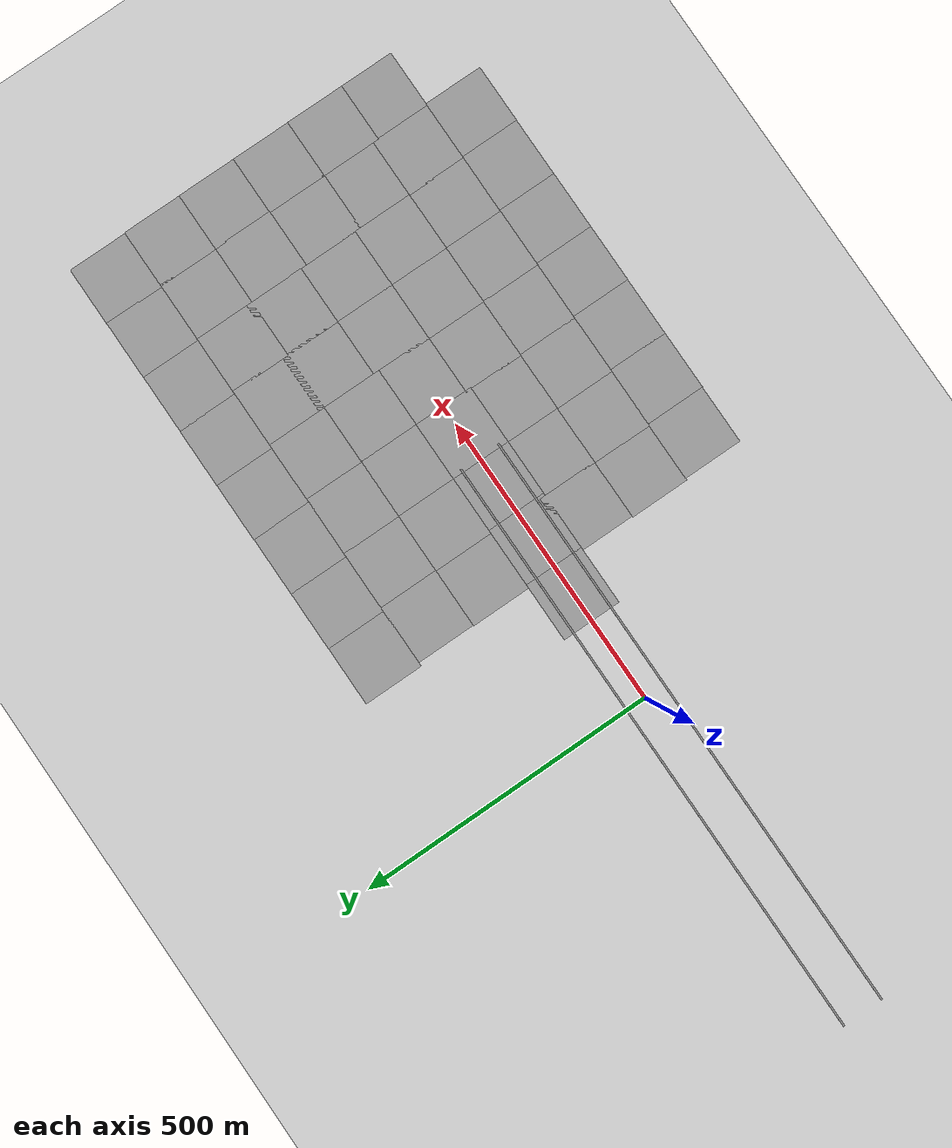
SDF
<sdf version="1.7">
 <world name="default">
  <model name="ground_plane">
   <static>1</static>
   <link name="link">
    <collision name="collision">
     <geometry><plane><normal>0 0 1</normal><size>100 100</size></plane></geometry>
     <surface><friction><ode><mu>100</mu><mu2>50</mu2></ode></friction></surface>
    </collision>
    <visual name="visual">
     <cast_shadows>0</cast_shadows>
     <geometry><plane><normal>0 0 1</normal><size>100 100</size></plane></geometry>
     <material>
      <script><uri>file://media/materials/scripts/gazebo.material</uri><name>Gazebo/Grey</name></script>
     </material>
    </visual>
   </link>
  </model>
  <model name="ground_plane_1">
   <static>1</static>
   <link name="link">
    <collision name="collision">
     <geometry><plane><normal>0 0 1</normal><size>100 100</size></plane></geometry>
     <surface>
      <contact><collide_bitmask>65535</collide_bitmask></contact>
      <friction><ode><mu>100</mu><mu2>50</mu2></ode></friction>
     </surface>
    </collision>
    <visual name="visual">
     <cast_shadows>0</cast_shadows>
     <geometry><plane><normal>0 0 1</normal><size>100 100</size></plane></geometry>
     <material>
      <script><uri>file://media/materials/scripts/gazebo.material</uri><name>Gazebo/Grey</name></script>
     </material>
    </visual>
   </link>
   <pose>189.869 0.088778 0 0 -0 0</pose>
  </model>
  <model name="ground_plane_2">
   <static>1</static>
   <link name="link">
    <collision name="collision">
     <geometry><plane><normal>0 0 1</normal><size>100 100</size></plane></geometry>
     <surface>
      <contact><collide_bitmask>65535</collide_bitmask></contact>
      <friction><ode><mu>100</mu><mu2>50</mu2></ode></friction>
     </surface>
    </collision>
    <visual name="visual">
     <cast_shadows>0</cast_shadows>
     <geometry><plane><normal>0 0 1</normal><size>100 100</size></plane></geometry>
     <material>
      <script><uri>file://media/materials/scripts/gazebo.material</uri><name>Gazebo/Grey</name></script>
     </material>
    </visual>
   </link>
   <pose>289.291 0.137369 0 0 -0 0</pose>
  </model>
  <model name="ground_plane_3">
   <static>1</static>
   <link name="link">
    <collision name="collision">
     <geometry><plane><normal>0 0 1</normal><size>100 100</size></plane></geometry>
     <surface>
      <contact><collide_bitmask>65535</collide_bitmask></contact>
      <friction><ode><mu>100</mu><mu2>50</mu2></ode></friction>
     </surface>
    </collision>
    <visual name="visual">
     <cast_shadows>0</cast_shadows>
     <geometry><plane><normal>0 0 1</normal><size>100 100</size></plane></geometry>
     <material>
      <script><uri>file://media/materials/scripts/gazebo.material</uri><name>Gazebo/Grey</name></script>
     </material>
    </visual>
   </link>
   <pose>384.2 0.162384 0 0 -0 0</pose>
  </model>
  <model name="ground_plane_4">
   <static>1</static>
   <link name="link">
    <collision name="collision">
     <geometry><plane><normal>0 0 1</normal><size>100 100</size></plane></geometry>
     <surface>
      <contact><collide_bitmask>65535</collide_bitmask></contact>
      <friction><ode><mu>100</mu><mu2>50</mu2></ode></friction>
     </surface>
    </collision>
    <visual name="visual">
     <cast_shadows>0</cast_shadows>
     <geometry><plane><normal>0 0 1</normal><size>100 100</size></plane></geometry>
     <material>
      <script><uri>file://media/materials/scripts/gazebo.material</uri><name>Gazebo/Grey</name></script>
     </material>
    </visual>
   </link>
   <pose>483.4 0.219802 0 0 -0 0</pose>
  </model>
  <model name="ground_plane_11">
   <static>1</static>
   <link name="link">
    <collision name="collision">
     <geometry><plane><normal>0 0 1</normal><size>100 100</size></plane></geometry>
     <surface>
      <contact><collide_bitmask>65535</collide_bitmask></contact>
      <friction><ode><mu>100</mu><mu2>50</mu2></ode></friction>
     </surface>
    </collision>
    <visual name="visual">
     <cast_shadows>0</cast_shadows>
     <geometry><plane><normal>0 0 1</normal><size>100 100</size></plane></geometry>
     <material>
      <script><uri>file://media/materials/scripts/gazebo.material</uri><name>Gazebo/Grey</name></script>
     </material>
    </visual>
   </link>
   <pose>583.142 0.155845 0 0 -0 0</pose>
  </model>
  <model name="ground_plane_15">
   <static>1</static>
   <link name="link">
    <collision name="collision">
     <geometry><plane><normal>0 0 1</normal><size>100 100</size></plane></geometry>
     <surface>
      <contact><collide_bitmask>65535</collide_bitmask></contact>
      <friction><ode><mu>100</mu><mu2>50</mu2></ode></friction>
     </surface>
    </collision>
    <visual name="visual">
     <cast_shadows>0</cast_shadows>
     <geometry><plane><normal>0 0 1</normal><size>100 100</size></plane></geometry>
     <material>
      <script><uri>file://media/materials/scripts/gazebo.material</uri><name>Gazebo/Grey</name></script>
     </material>
    </visual>
   </link>
   <pose>284.873 -89.7127 0 0 -0 0</pose>
  </model>
  <model name="ground_plane_16">
   <static>1</static>
   <link name="link">
    <collision name="collision">
     <geometry><plane><normal>0 0 1</normal><size>100 100</size></plane></geometry>
     <surface>
      <contact><collide_bitmask>65535</collide_bitmask></contact>
      <friction><ode><mu>100</mu><mu2>50</mu2></ode></friction>
     </surface>
    </collision>
    <visual name="visual">
     <cast_shadows>0</cast_shadows>
     <geometry><plane><normal>0 0 1</normal><size>100 100</size></plane></geometry>
     <material>
      <script><uri>file://media/materials/scripts/gazebo.material</uri><name>Gazebo/Grey</name></script>
     </material>
    </visual>
   </link>
   <pose>383.053 -89.8676 0 0 -0 0</pose>
  </model>
  <model name="ground_plane_17">
   <static>1</static>
   <link name="link">
    <collision name="collision">
     <geometry><plane><normal>0 0 1</normal><size>100 100</size></plane></geometry>
     <surface>
      <contact><collide_bitmask>65535</collide_bitmask></contact>
      <friction><ode><mu>100</mu><mu2>50</mu2></ode></friction>
     </surface>
    </collision>
    <visual name="visual">
     <cast_shadows>0</cast_shadows>
     <geometry><plane><normal>0 0 1</normal><size>100 100</size></plane></geometry>
     <material>
      <script><uri>file://media/materials/scripts/gazebo.material</uri><name>Gazebo/Grey</name></script>
     </material>
    </visual>
   </link>
   <pose>481.519 -90.0718 0 0 -0 0</pose>
  </model>
  <model name="ground_plane_18">
   <static>1</static>
   <link name="link">
    <collision name="collision">
     <geometry><plane><normal>0 0 1</normal><size>100 100</size></plane></geometry>
     <surface>
      <contact><collide_bitmask>65535</collide_bitmask></contact>
      <friction><ode><mu>100</mu><mu2>50</mu2></ode></friction>
     </surface>
    </collision>
    <visual name="visual">
     <cast_shadows>0</cast_shadows>
     <geometry><plane><normal>0 0 1</normal><size>100 100</size></plane></geometry>
     <material>
      <script><uri>file://media/materials/scripts/gazebo.material</uri><name>Gazebo/Grey</name></script>
     </material>
    </visual>
   </link>
   <pose>579.995 -90.1584 0 0 -0 0</pose>
  </model>
  <model name="ground_plane_25">
   <static>1</static>
   <link name="link">
    <collision name="collision">
     <geometry><plane><normal>0 0 1</normal><size>100 100</size></plane></geometry>
     <surface>
      <contact><collide_bitmask>65535</collide_bitmask></contact>
      <friction><ode><mu>100</mu><mu2>50</mu2></ode></friction>
     </surface>
    </collision>
    <visual name="visual">
     <cast_shadows>0</cast_shadows>
     <geometry><plane><normal>0 0 1</normal><size>100 100</size></plane></geometry>
     <material>
      <script><uri>file://media/materials/scripts/gazebo.material</uri><name>Gazebo/Grey</name></script>
     </material>
    </visual>
   </link>
   <pose>583.344 99.8555 0 0 -0 0</pose>
  </model>
  <model name="ground_plane_26">
   <static>1</static>
   <link name="link">
    <collision name="collision">
     <geometry><plane><normal>0 0 1</normal><size>100 100</size></plane></geometry>
     <surface>
      <contact><collide_bitmask>65535</collide_bitmask></contact>
      <friction><ode><mu>100</mu><mu2>50</mu2></ode></friction>
     </surface>
    </collision>
    <visual name="visual">
     <cast_shadows>0</cast_shadows>
     <geometry><plane><normal>0 0 1</normal><size>100 100</size></plane></geometry>
     <material>
      <script><uri>file://media/materials/scripts/gazebo.material</uri><name>Gazebo/Grey</name></script>
     </material>
    </visual>
   </link>
   <pose>483.812 99.9791 0 0 -0 0</pose>
  </model>
  <model name="ground_plane_27">
   <static>1</static>
   <link name="link">
    <collision name="collision">
     <geometry><plane><normal>0 0 1</normal><size>100 100</size></plane></geometry>
     <surface>
      <contact><collide_bitmask>65535</collide_bitmask></contact>
      <friction><ode><mu>100</mu><mu2>50</mu2></ode></friction>
     </surface>
    </collision>
    <visual name="visual">
     <cast_shadows>0</cast_shadows>
     <geometry><plane><normal>0 0 1</normal><size>100 100</size></plane></geometry>
     <material>
      <script><uri>file://media/materials/scripts/gazebo.material</uri><name>Gazebo/Grey</name></script>
     </material>
    </visual>
   </link>
   <pose>383.847 100.1 0 0 -0 0</pose>
  </model>
  <model name="ground_plane_28">
   <static>1</static>
   <link name="link">
    <collision name="collision">
     <geometry><plane><normal>0 0 1</normal><size>100 100</size></plane></geometry>
     <surface>
      <contact><collide_bitmask>65535</collide_bitmask></contact>
      <friction><ode><mu>100</mu><mu2>50</mu2></ode></friction>
     </surface>
    </collision>
    <visual name="visual">
     <cast_shadows>0</cast_shadows>
     <geometry><plane><normal>0 0 1</normal><size>100 100</size></plane></geometry>
     <material>
      <script><uri>file://media/materials/scripts/gazebo.material</uri><name>Gazebo/Grey</name></script>
     </material>
    </visual>
   </link>
   <pose>283.896 100.09 0 0 -0 0</pose>
  </model>
  <model name="ground_plane_38">
   <static>1</static>
   <link name="link">
    <collision name="collision">
     <geometry><plane><normal>0 0 1</normal><size>100 100</size></plane></geometry>
     <surface>
      <contact><collide_bitmask>65535</collide_bitmask></contact>
      <friction><ode><mu>100</mu><mu2>50</mu2></ode></friction>
     </surface>
    </collision>
    <visual name="visual">
     <cast_shadows>0</cast_shadows>
     <geometry><plane><normal>0 0 1</normal><size>100 100</size></plane></geometry>
     <material>
      <script><uri>file://media/materials/scripts/gazebo.material</uri><name>Gazebo/Grey</name></script>
     </material>
    </visual>
   </link>
   <pose>679.783 -90.0597 0 0 -0 0</pose>
  </model>
  <model name="ground_plane_39">
   <static>1</static>
   <link name="link">
    <collision name="collision">
     <geometry><plane><normal>0 0 1</normal><size>100 100</size></plane></geometry>
     <surface>
      <contact><collide_bitmask>65535</collide_bitmask></contact>
      <friction><ode><mu>100</mu><mu2>50</mu2></ode></friction>
     </surface>
    </collision>
    <visual name="visual">
     <cast_shadows>0</cast_shadows>
     <geometry><plane><normal>0 0 1</normal><size>100 100</size></plane></geometry>
     <material>
      <script><uri>file://media/materials/scripts/gazebo.material</uri><name>Gazebo/Grey</name></script>
     </material>
    </visual>
   </link>
   <pose>679.782 9.67716 0 0 -0 0</pose>
  </model>
  <model name="ground_plane_40">
   <static>1</static>
   <link name="link">
    <collision name="collision">
     <geometry><plane><normal>0 0 1</normal><size>100 100</size></plane></geometry>
     <surface>
      <contact><collide_bitmask>65535</collide_bitmask></contact>
      <friction><ode><mu>100</mu><mu2>50</mu2></ode></friction>
     </surface>
    </collision>
    <visual name="visual">
     <cast_shadows>0</cast_shadows>
     <geometry><plane><normal>0 0 1</normal><size>100 100</size></plane></geometry>
     <material>
      <script><uri>file://media/materials/scripts/gazebo.material</uri><name>Gazebo/Grey</name></script>
     </material>
    </visual>
   </link>
   <pose>682.586 109.571 0 0 -0 0</pose>
  </model>
  <model name="ground_plane_41">
   <static>1</static>
   <link name="link">
    <collision name="collision">
     <geometry><plane><normal>0 0 1</normal><size>100 100</size></plane></geometry>
     <surface>
      <contact><collide_bitmask>65535</collide_bitmask></contact>
      <friction><ode><mu>100</mu><mu2>50</mu2></ode></friction>
     </surface>
    </collision>
    <visual name="visual">
     <cast_shadows>0</cast_shadows>
     <geometry><plane><normal>0 0 1</normal><size>100 100</size></plane></geometry>
     <material>
      <script><uri>file://media/materials/scripts/gazebo.material</uri><name>Gazebo/Grey</name></script>
     </material>
    </visual>
   </link>
   <pose>779.284 -89.9308 0 0 -0 0</pose>
  </model>
  <model name="ground_plane_42">
   <static>1</static>
   <link name="link">
    <collision name="collision">
     <geometry><plane><normal>0 0 1</normal><size>100 100</size></plane></geometry>
     <surface>
      <contact><collide_bitmask>65535</collide_bitmask></contact>
      <friction><ode><mu>100</mu><mu2>50</mu2></ode></friction>
     </surface>
    </collision>
    <visual name="visual">
     <cast_shadows>0</cast_shadows>
     <geometry><plane><normal>0 0 1</normal><size>100 100</size></plane></geometry>
     <material>
      <script><uri>file://media/materials/scripts/gazebo.material</uri><name>Gazebo/Grey</name></script>
     </material>
    </visual>
   </link>
   <pose>779.063 9.76871 0 0 -0 0</pose>
  </model>
  <model name="ground_plane_43">
   <static>1</static>
   <link name="link">
    <collision name="collision">
     <geometry><plane><normal>0 0 1</normal><size>100 100</size></plane></geometry>
     <surface>
      <contact><collide_bitmask>65535</collide_bitmask></contact>
      <friction><ode><mu>100</mu><mu2>50</mu2></ode></friction>
     </surface>
    </collision>
    <visual name="visual">
     <cast_shadows>0</cast_shadows>
     <geometry><plane><normal>0 0 1</normal><size>100 100</size></plane></geometry>
     <material>
      <script><uri>file://media/materials/scripts/gazebo.material</uri><name>Gazebo/Grey</name></script>
     </material>
    </visual>
   </link>
   <pose>779.063 109.53 0 0 -0 0</pose>
  </model>
  <model name="ground_plane_44">
   <static>1</static>
   <link name="link">
    <collision name="collision">
     <geometry><plane><normal>0 0 1</normal><size>100 100</size></plane></geometry>
     <surface>
      <contact><collide_bitmask>65535</collide_bitmask></contact>
      <friction><ode><mu>100</mu><mu2>50</mu2></ode></friction>
     </surface>
    </collision>
    <visual name="visual">
     <cast_shadows>0</cast_shadows>
     <geometry><plane><normal>0 0 1</normal><size>100 100</size></plane></geometry>
     <material>
      <script><uri>file://media/materials/scripts/gazebo.material</uri><name>Gazebo/Grey</name></script>
     </material>
    </visual>
   </link>
   <pose>779.778 -189.58 0 0 -0 0</pose>
  </model>
  <model name="ground_plane_45">
   <static>1</static>
   <link name="link">
    <collision name="collision">
     <geometry><plane><normal>0 0 1</normal><size>100 100</size></plane></geometry>
     <surface>
      <contact><collide_bitmask>65535</collide_bitmask></contact>
      <friction><ode><mu>100</mu><mu2>50</mu2></ode></friction>
     </surface>
    </collision>
    <visual name="visual">
     <cast_shadows>0</cast_shadows>
     <geometry><plane><normal>0 0 1</normal><size>100 100</size></plane></geometry>
     <material>
      <script><uri>file://media/materials/scripts/gazebo.material</uri><name>Gazebo/Grey</name></script>
     </material>
    </visual>
   </link>
   <pose>679.964 -189.679 0 0 -0 0</pose>
  </model>
  <model name="ground_plane_46">
   <static>1</static>
   <link name="link">
    <collision name="collision">
     <geometry><plane><normal>0 0 1</normal><size>100 100</size></plane></geometry>
     <surface>
      <contact><collide_bitmask>65535</collide_bitmask></contact>
      <friction><ode><mu>100</mu><mu2>50</mu2></ode></friction>
     </surface>
    </collision>
    <visual name="visual">
     <cast_shadows>0</cast_shadows>
     <geometry><plane><normal>0 0 1</normal><size>100 100</size></plane></geometry>
     <material>
      <script><uri>file://media/materials/scripts/gazebo.material</uri><name>Gazebo/Grey</name></script>
     </material>
    </visual>
   </link>
   <pose>580.929 -189.656 0 0 -0 0</pose>
  </model>
  <model name="ground_plane_47">
   <static>1</static>
   <link name="link">
    <collision name="collision">
     <geometry><plane><normal>0 0 1</normal><size>100 100</size></plane></geometry>
     <surface>
      <contact><collide_bitmask>65535</collide_bitmask></contact>
      <friction><ode><mu>100</mu><mu2>50</mu2></ode></friction>
     </surface>
    </collision>
    <visual name="visual">
     <cast_shadows>0</cast_shadows>
     <geometry><plane><normal>0 0 1</normal><size>100 100</size></plane></geometry>
     <material>
      <script><uri>file://media/materials/scripts/gazebo.material</uri><name>Gazebo/Grey</name></script>
     </material>
    </visual>
   </link>
   <pose>481.923 -189.599 0 0 -0 0</pose>
  </model>
  <model name="ground_plane_48">
   <static>1</static>
   <link name="link">
    <collision name="collision">
     <geometry><plane><normal>0 0 1</normal><size>100 100</size></plane></geometry>
     <surface>
      <contact><collide_bitmask>65535</collide_bitmask></contact>
      <friction><ode><mu>100</mu><mu2>50</mu2></ode></friction>
     </surface>
    </collision>
    <visual name="visual">
     <cast_shadows>0</cast_shadows>
     <geometry><plane><normal>0 0 1</normal><size>100 100</size></plane></geometry>
     <material>
      <script><uri>file://media/materials/scripts/gazebo.material</uri><name>Gazebo/Grey</name></script>
     </material>
    </visual>
   </link>
   <pose>382.424 -189.408 0 0 -0 0</pose>
  </model>
  <model name="ground_plane_49">
   <static>1</static>
   <link name="link">
    <collision name="collision">
     <geometry><plane><normal>0 0 1</normal><size>100 100</size></plane></geometry>
     <surface>
      <contact><collide_bitmask>65535</collide_bitmask></contact>
      <friction><ode><mu>100</mu><mu2>50</mu2></ode></friction>
     </surface>
    </collision>
    <visual name="visual">
     <cast_shadows>0</cast_shadows>
     <geometry><plane><normal>0 0 1</normal><size>100 100</size></plane></geometry>
     <material>
      <script><uri>file://media/materials/scripts/gazebo.material</uri><name>Gazebo/Grey</name></script>
     </material>
    </visual>
   </link>
   <pose>283.057 -189.335 0 0 -0 0</pose>
  </model>
  <model name="ground_plane_59">
   <static>1</static>
   <link name="link">
    <collision name="collision">
     <geometry><plane><normal>0 0 1</normal><size>100 100</size></plane></geometry>
     <surface>
      <contact><collide_bitmask>65535</collide_bitmask></contact>
      <friction><ode><mu>100</mu><mu2>50</mu2></ode></friction>
     </surface>
    </collision>
    <visual name="visual">
     <cast_shadows>0</cast_shadows>
     <geometry><plane><normal>0 0 1</normal><size>100 100</size></plane></geometry>
     <material>
      <script><uri>file://media/materials/scripts/gazebo.material</uri><name>Gazebo/Grey</name></script>
     </material>
    </visual>
   </link>
   <pose>582.865 199.934 0 0 -0 0</pose>
  </model>
  <model name="ground_plane_60">
   <static>1</static>
   <link name="link">
    <collision name="collision">
     <geometry><plane><normal>0 0 1</normal><size>100 100</size></plane></geometry>
     <surface>
      <contact><collide_bitmask>65535</collide_bitmask></contact>
      <friction><ode><mu>100</mu><mu2>50</mu2></ode></friction>
     </surface>
    </collision>
    <visual name="visual">
     <cast_shadows>0</cast_shadows>
     <geometry><plane><normal>0 0 1</normal><size>100 100</size></plane></geometry>
     <material>
      <script><uri>file://media/materials/scripts/gazebo.material</uri><name>Gazebo/Grey</name></script>
     </material>
    </visual>
   </link>
   <pose>483.246 199.514 0 0 -0 0</pose>
  </model>
  <model name="ground_plane_61">
   <static>1</static>
   <link name="link">
    <collision name="collision">
     <geometry><plane><normal>0 0 1</normal><size>100 100</size></plane></geometry>
     <surface>
      <contact><collide_bitmask>65535</collide_bitmask></contact>
      <friction><ode><mu>100</mu><mu2>50</mu2></ode></friction>
     </surface>
    </collision>
    <visual name="visual">
     <cast_shadows>0</cast_shadows>
     <geometry><plane><normal>0 0 1</normal><size>100 100</size></plane></geometry>
     <material>
      <script><uri>file://media/materials/scripts/gazebo.material</uri><name>Gazebo/Grey</name></script>
     </material>
    </visual>
   </link>
   <pose>682.1 199.798 0 0 -0 0</pose>
  </model>
  <model name="ground_plane_62">
   <static>1</static>
   <link name="link">
    <collision name="collision">
     <geometry><plane><normal>0 0 1</normal><size>100 100</size></plane></geometry>
     <surface>
      <contact><collide_bitmask>65535</collide_bitmask></contact>
      <friction><ode><mu>100</mu><mu2>50</mu2></ode></friction>
     </surface>
    </collision>
    <visual name="visual">
     <cast_shadows>0</cast_shadows>
     <geometry><plane><normal>0 0 1</normal><size>100 100</size></plane></geometry>
     <material>
      <script><uri>file://media/materials/scripts/gazebo.material</uri><name>Gazebo/Grey</name></script>
     </material>
    </visual>
   </link>
   <pose>779.518 200.091 0 0 -0 0</pose>
  </model>
  <model name="ground_plane_63">
   <static>1</static>
   <link name="link">
    <collision name="collision">
     <geometry><plane><normal>0 0 1</normal><size>100 100</size></plane></geometry>
     <surface>
      <contact><collide_bitmask>65535</collide_bitmask></contact>
      <friction><ode><mu>100</mu><mu2>50</mu2></ode></friction>
     </surface>
    </collision>
    <visual name="visual">
     <cast_shadows>0</cast_shadows>
     <geometry><plane><normal>0 0 1</normal><size>100 100</size></plane></geometry>
     <material>
      <script><uri>file://media/materials/scripts/gazebo.material</uri><name>Gazebo/Grey</name></script>
     </material>
    </visual>
   </link>
   <pose>384.005 199.591 0 0 -0 0</pose>
  </model>
  <model name="ground_plane_64">
   <static>1</static>
   <link name="link">
    <collision name="collision">
     <geometry><plane><normal>0 0 1</normal><size>100 100</size></plane></geometry>
     <surface>
      <contact><collide_bitmask>65535</collide_bitmask></contact>
      <friction><ode><mu>100</mu><mu2>50</mu2></ode></friction>
     </surface>
    </collision>
    <visual name="visual">
     <cast_shadows>0</cast_shadows>
     <geometry><plane><normal>0 0 1</normal><size>100 100</size></plane></geometry>
     <material>
      <script><uri>file://media/materials/scripts/gazebo.material</uri><name>Gazebo/Grey</name></script>
     </material>
    </visual>
   </link>
   <pose>285.128 199.768 0 0 -0 0</pose>
  </model>
  <model name="ground_plane_99">
   <static>1</static>
   <link name="link">
    <collision name="collision">
     <geometry><plane><normal>0 0 1</normal><size>100 100</size></plane></geometry>
     <surface>
      <contact><collide_bitmask>65535</collide_bitmask></contact>
      <friction><ode><mu>100</mu><mu2>50</mu2></ode></friction>
     </surface>
    </collision>
    <visual name="visual">
     <cast_shadows>0</cast_shadows>
     <geometry><plane><normal>0 0 1</normal><size>100 100</size></plane></geometry>
     <material>
      <script><uri>file://media/materials/scripts/gazebo.material</uri><name>Gazebo/Grey</name></script>
     </material>
    </visual>
   </link>
   <pose>878.257 199.838 0 0 -0 0</pose>
  </model>
  <model name="ground_plane_100">
   <static>1</static>
   <link name="link">
    <collision name="collision">
     <geometry><plane><normal>0 0 1</normal><size>100 100</size></plane></geometry>
     <surface>
      <contact><collide_bitmask>65535</collide_bitmask></contact>
      <friction><ode><mu>100</mu><mu2>50</mu2></ode></friction>
     </surface>
    </collision>
    <visual name="visual">
     <cast_shadows>0</cast_shadows>
     <geometry><plane><normal>0 0 1</normal><size>100 100</size></plane></geometry>
     <material>
      <script><uri>file://media/materials/scripts/gazebo.material</uri><name>Gazebo/Grey</name></script>
     </material>
    </visual>
   </link>
   <pose>878.209 99.8943 0 0 -0 0</pose>
  </model>
  <model name="ground_plane_101">
   <static>1</static>
   <link name="link">
    <collision name="collision">
     <geometry><plane><normal>0 0 1</normal><size>100 100</size></plane></geometry>
     <surface>
      <contact><collide_bitmask>65535</collide_bitmask></contact>
      <friction><ode><mu>100</mu><mu2>50</mu2></ode></friction>
     </surface>
    </collision>
    <visual name="visual">
     <cast_shadows>0</cast_shadows>
     <geometry><plane><normal>0 0 1</normal><size>100 100</size></plane></geometry>
     <material>
      <script><uri>file://media/materials/scripts/gazebo.material</uri><name>Gazebo/Grey</name></script>
     </material>
    </visual>
   </link>
   <pose>878.209 0.060441 0 0 -0 0</pose>
  </model>
  <model name="ground_plane_102">
   <static>1</static>
   <link name="link">
    <collision name="collision">
     <geometry><plane><normal>0 0 1</normal><size>100 100</size></plane></geometry>
     <surface>
      <contact><collide_bitmask>65535</collide_bitmask></contact>
      <friction><ode><mu>100</mu><mu2>50</mu2></ode></friction>
     </surface>
    </collision>
    <visual name="visual">
     <cast_shadows>0</cast_shadows>
     <geometry><plane><normal>0 0 1</normal><size>100 100</size></plane></geometry>
     <material>
      <script><uri>file://media/materials/scripts/gazebo.material</uri><name>Gazebo/Grey</name></script>
     </material>
    </visual>
   </link>
   <pose>878.209 -98.1632 0 0 -0 0</pose>
  </model>
  <model name="ground_plane_103">
   <static>1</static>
   <link name="link">
    <collision name="collision">
     <geometry><plane><normal>0 0 1</normal><size>100 100</size></plane></geometry>
     <surface>
      <contact><collide_bitmask>65535</collide_bitmask></contact>
      <friction><ode><mu>100</mu><mu2>50</mu2></ode></friction>
     </surface>
    </collision>
    <visual name="visual">
     <cast_shadows>0</cast_shadows>
     <geometry><plane><normal>0 0 1</normal><size>100 100</size></plane></geometry>
     <material>
      <script><uri>file://media/materials/scripts/gazebo.material</uri><name>Gazebo/Grey</name></script>
     </material>
    </visual>
   </link>
   <pose>877.861 -189.598 0 0 -0 0</pose>
  </model>
  <model name="ground_plane_108">
   <static>1</static>
   <link name="link">
    <collision name="collision">
     <geometry><plane><normal>0 0 1</normal><size>100 100</size></plane></geometry>
     <surface>
      <contact><collide_bitmask>65535</collide_bitmask></contact>
      <friction><ode><mu>100</mu><mu2>50</mu2></ode></friction>
     </surface>
    </collision>
    <visual name="visual">
     <cast_shadows>0</cast_shadows>
     <geometry><plane><normal>0 0 1</normal><size>100 100</size></plane></geometry>
     <material>
      <script><uri>file://media/materials/scripts/gazebo.material</uri><name>Gazebo/Grey</name></script>
     </material>
    </visual>
   </link>
   <pose>975.791 200.029 0 0 -0 0</pose>
  </model>
  <model name="ground_plane_109">
   <static>1</static>
   <link name="link">
    <collision name="collision">
     <geometry><plane><normal>0 0 1</normal><size>100 100</size></plane></geometry>
     <surface>
      <contact><collide_bitmask>65535</collide_bitmask></contact>
      <friction><ode><mu>100</mu><mu2>50</mu2></ode></friction>
     </surface>
    </collision>
    <visual name="visual">
     <cast_shadows>0</cast_shadows>
     <geometry><plane><normal>0 0 1</normal><size>100 100</size></plane></geometry>
     <material>
      <script><uri>file://media/materials/scripts/gazebo.material</uri><name>Gazebo/Grey</name></script>
     </material>
    </visual>
   </link>
   <pose>976.085 100.44 0 0 -0 0</pose>
  </model>
  <model name="ground_plane_110">
   <static>1</static>
   <link name="link">
    <collision name="collision">
     <geometry><plane><normal>0 0 1</normal><size>100 100</size></plane></geometry>
     <surface>
      <contact><collide_bitmask>65535</collide_bitmask></contact>
      <friction><ode><mu>100</mu><mu2>50</mu2></ode></friction>
     </surface>
    </collision>
    <visual name="visual">
     <cast_shadows>0</cast_shadows>
     <geometry><plane><normal>0 0 1</normal><size>100 100</size></plane></geometry>
     <material>
      <script><uri>file://media/materials/scripts/gazebo.material</uri><name>Gazebo/Grey</name></script>
     </material>
    </visual>
   </link>
   <pose>976.086 0.493959 0 0 -0 0</pose>
  </model>
  <model name="ground_plane_111">
   <static>1</static>
   <link name="link">
    <collision name="collision">
     <geometry><plane><normal>0 0 1</normal><size>100 100</size></plane></geometry>
     <surface>
      <contact><collide_bitmask>65535</collide_bitmask></contact>
      <friction><ode><mu>100</mu><mu2>50</mu2></ode></friction>
     </surface>
    </collision>
    <visual name="visual">
     <cast_shadows>0</cast_shadows>
     <geometry><plane><normal>0 0 1</normal><size>100 100</size></plane></geometry>
     <material>
      <script><uri>file://media/materials/scripts/gazebo.material</uri><name>Gazebo/Grey</name></script>
     </material>
    </visual>
   </link>
   <pose>976.359 -99.3142 0 0 -0 0</pose>
  </model>
  <model name="ground_plane_112">
   <static>1</static>
   <link name="link">
    <collision name="collision">
     <geometry><plane><normal>0 0 1</normal><size>100 100</size></plane></geometry>
     <surface>
      <contact><collide_bitmask>65535</collide_bitmask></contact>
      <friction><ode><mu>100</mu><mu2>50</mu2></ode></friction>
     </surface>
    </collision>
    <visual name="visual">
     <cast_shadows>0</cast_shadows>
     <geometry><plane><normal>0 0 1</normal><size>100 100</size></plane></geometry>
     <material>
      <script><uri>file://media/materials/scripts/gazebo.material</uri><name>Gazebo/Grey</name></script>
     </material>
    </visual>
   </link>
   <pose>976.381 -190.136 0 0 -0 0</pose>
  </model>
  <model name="ground_plane_207">
   <static>1</static>
   <link name="link">
    <collision name="collision">
     <geometry><plane><normal>0 0 1</normal><size>100 100</size></plane></geometry>
     <surface>
      <contact><collide_bitmask>65535</collide_bitmask></contact>
      <friction><ode><mu>100</mu><mu2>50</mu2></ode></friction>
     </surface>
    </collision>
    <visual name="visual">
     <cast_shadows>0</cast_shadows>
     <geometry><plane><normal>0 0 1</normal><size>100 100</size></plane></geometry>
     <material>
      <script><uri>file://media/materials/scripts/gazebo.material</uri><name>Gazebo/Grey</name></script>
     </material>
    </visual>
   </link>
   <pose>881.085 -289.634 0 0 -0 0</pose>
  </model>
  <model name="ground_plane_208">
   <static>1</static>
   <link name="link">
    <collision name="collision">
     <geometry><plane><normal>0 0 1</normal><size>100 100</size></plane></geometry>
     <surface>
      <contact><collide_bitmask>65535</collide_bitmask></contact>
      <friction><ode><mu>100</mu><mu2>50</mu2></ode></friction>
     </surface>
    </collision>
    <visual name="visual">
     <cast_shadows>0</cast_shadows>
     <geometry><plane><normal>0 0 1</normal><size>100 100</size></plane></geometry>
     <material>
      <script><uri>file://media/materials/scripts/gazebo.material</uri><name>Gazebo/Grey</name></script>
     </material>
    </visual>
   </link>
   <pose>781.731 -289.261 0 0 -0 0</pose>
  </model>
  <model name="ground_plane_209">
   <static>1</static>
   <link name="link">
    <collision name="collision">
     <geometry><plane><normal>0 0 1</normal><size>100 100</size></plane></geometry>
     <surface>
      <contact><collide_bitmask>65535</collide_bitmask></contact>
      <friction><ode><mu>100</mu><mu2>50</mu2></ode></friction>
     </surface>
    </collision>
    <visual name="visual">
     <cast_shadows>0</cast_shadows>
     <geometry><plane><normal>0 0 1</normal><size>100 100</size></plane></geometry>
     <material>
      <script><uri>file://media/materials/scripts/gazebo.material</uri><name>Gazebo/Grey</name></script>
     </material>
    </visual>
   </link>
   <pose>682.882 -289.433 0 0 -0 0</pose>
  </model>
  <model name="ground_plane_210">
   <static>1</static>
   <link name="link">
    <collision name="collision">
     <geometry><plane><normal>0 0 1</normal><size>100 100</size></plane></geometry>
     <surface>
      <contact><collide_bitmask>65535</collide_bitmask></contact>
      <friction><ode><mu>100</mu><mu2>50</mu2></ode></friction>
     </surface>
    </collision>
    <visual name="visual">
     <cast_shadows>0</cast_shadows>
     <geometry><plane><normal>0 0 1</normal><size>100 100</size></plane></geometry>
     <material>
      <script><uri>file://media/materials/scripts/gazebo.material</uri><name>Gazebo/Grey</name></script>
     </material>
    </visual>
   </link>
   <pose>584.319 -289.433 0 0 -0 0</pose>
  </model>
  <model name="ground_plane_211">
   <static>1</static>
   <link name="link">
    <collision name="collision">
     <geometry><plane><normal>0 0 1</normal><size>100 100</size></plane></geometry>
     <surface>
      <contact><collide_bitmask>65535</collide_bitmask></contact>
      <friction><ode><mu>100</mu><mu2>50</mu2></ode></friction>
     </surface>
    </collision>
    <visual name="visual">
     <cast_shadows>0</cast_shadows>
     <geometry><plane><normal>0 0 1</normal><size>100 100</size></plane></geometry>
     <material>
      <script><uri>file://media/materials/scripts/gazebo.material</uri><name>Gazebo/Grey</name></script>
     </material>
    </visual>
   </link>
   <pose>484.68 -289.106 0 0 -0 0</pose>
  </model>
  <model name="ground_plane_212">
   <static>1</static>
   <link name="link">
    <collision name="collision">
     <geometry><plane><normal>0 0 1</normal><size>100 100</size></plane></geometry>
     <surface>
      <contact><collide_bitmask>65535</collide_bitmask></contact>
      <friction><ode><mu>100</mu><mu2>50</mu2></ode></friction>
     </surface>
    </collision>
    <visual name="visual">
     <cast_shadows>0</cast_shadows>
     <geometry><plane><normal>0 0 1</normal><size>100 100</size></plane></geometry>
     <material>
      <script><uri>file://media/materials/scripts/gazebo.material</uri><name>Gazebo/Grey</name></script>
     </material>
    </visual>
   </link>
   <pose>385.747 -289.106 0 0 -0 0</pose>
  </model>
  <model name="ground_plane_213">
   <static>1</static>
   <link name="link">
    <collision name="collision">
     <geometry><plane><normal>0 0 1</normal><size>100 100</size></plane></geometry>
     <surface>
      <contact><collide_bitmask>65535</collide_bitmask></contact>
      <friction><ode><mu>100</mu><mu2>50</mu2></ode></friction>
     </surface>
    </collision>
    <visual name="visual">
     <cast_shadows>0</cast_shadows>
     <geometry><plane><normal>0 0 1</normal><size>100 100</size></plane></geometry>
     <material>
      <script><uri>file://media/materials/scripts/gazebo.material</uri><name>Gazebo/Grey</name></script>
     </material>
    </visual>
   </link>
   <pose>286.157 -288.503 0 0 -0 0</pose>
  </model>
  <model name="ground_plane_246">
   <static>1</static>
   <link name="link">
    <collision name="collision">
     <geometry><plane><normal>0 0 1</normal><size>100 100</size></plane></geometry>
     <surface>
      <contact><collide_bitmask>65535</collide_bitmask></contact>
      <friction><ode><mu>100</mu><mu2>50</mu2></ode></friction>
     </surface>
    </collision>
    <visual name="visual">
     <cast_shadows>0</cast_shadows>
     <geometry><plane><normal>0 0 1</normal><size>100 100</size></plane></geometry>
     <material>
      <script><uri>file://media/materials/scripts/gazebo.material</uri><name>Gazebo/Grey</name></script>
     </material>
    </visual>
   </link>
   <pose>974.454 299.965 0 0 -0 0</pose>
  </model>
  <model name="ground_plane_247">
   <static>1</static>
   <link name="link">
    <collision name="collision">
     <geometry><plane><normal>0 0 1</normal><size>100 100</size></plane></geometry>
     <surface>
      <contact><collide_bitmask>65535</collide_bitmask></contact>
      <friction><ode><mu>100</mu><mu2>50</mu2></ode></friction>
     </surface>
    </collision>
    <visual name="visual">
     <cast_shadows>0</cast_shadows>
     <geometry><plane><normal>0 0 1</normal><size>100 100</size></plane></geometry>
     <material>
      <script><uri>file://media/materials/scripts/gazebo.material</uri><name>Gazebo/Grey</name></script>
     </material>
    </visual>
   </link>
   <pose>875.837 299.616 0 0 -0 0</pose>
  </model>
  <model name="ground_plane_248">
   <static>1</static>
   <link name="link">
    <collision name="collision">
     <geometry><plane><normal>0 0 1</normal><size>100 100</size></plane></geometry>
     <surface>
      <contact><collide_bitmask>65535</collide_bitmask></contact>
      <friction><ode><mu>100</mu><mu2>50</mu2></ode></friction>
     </surface>
    </collision>
    <visual name="visual">
     <cast_shadows>0</cast_shadows>
     <geometry><plane><normal>0 0 1</normal><size>100 100</size></plane></geometry>
     <material>
      <script><uri>file://media/materials/scripts/gazebo.material</uri><name>Gazebo/Grey</name></script>
     </material>
    </visual>
   </link>
   <pose>775.903 299.385 0 0 -0 0</pose>
  </model>
  <model name="ground_plane_249">
   <static>1</static>
   <link name="link">
    <collision name="collision">
     <geometry><plane><normal>0 0 1</normal><size>100 100</size></plane></geometry>
     <surface>
      <contact><collide_bitmask>65535</collide_bitmask></contact>
      <friction><ode><mu>100</mu><mu2>50</mu2></ode></friction>
     </surface>
    </collision>
    <visual name="visual">
     <cast_shadows>0</cast_shadows>
     <geometry><plane><normal>0 0 1</normal><size>100 100</size></plane></geometry>
     <material>
      <script><uri>file://media/materials/scripts/gazebo.material</uri><name>Gazebo/Grey</name></script>
     </material>
    </visual>
   </link>
   <pose>676.921 299.718 0 0 -0 0</pose>
  </model>
  <model name="ground_plane_250">
   <static>1</static>
   <link name="link">
    <collision name="collision">
     <geometry><plane><normal>0 0 1</normal><size>100 100</size></plane></geometry>
     <surface>
      <contact><collide_bitmask>65535</collide_bitmask></contact>
      <friction><ode><mu>100</mu><mu2>50</mu2></ode></friction>
     </surface>
    </collision>
    <visual name="visual">
     <cast_shadows>0</cast_shadows>
     <geometry><plane><normal>0 0 1</normal><size>100 100</size></plane></geometry>
     <material>
      <script><uri>file://media/materials/scripts/gazebo.material</uri><name>Gazebo/Grey</name></script>
     </material>
    </visual>
   </link>
   <pose>577.42 299.549 0 0 -0 0</pose>
  </model>
  <model name="ground_plane_251">
   <static>1</static>
   <link name="link">
    <collision name="collision">
     <geometry><plane><normal>0 0 1</normal><size>100 100</size></plane></geometry>
     <surface>
      <contact><collide_bitmask>65535</collide_bitmask></contact>
      <friction><ode><mu>100</mu><mu2>50</mu2></ode></friction>
     </surface>
    </collision>
    <visual name="visual">
     <cast_shadows>0</cast_shadows>
     <geometry><plane><normal>0 0 1</normal><size>100 100</size></plane></geometry>
     <material>
      <script><uri>file://media/materials/scripts/gazebo.material</uri><name>Gazebo/Grey</name></script>
     </material>
    </visual>
   </link>
   <pose>478.133 299.031 0 0 -0 0</pose>
  </model>
  <model name="ground_plane_252">
   <static>1</static>
   <link name="link">
    <collision name="collision">
     <geometry><plane><normal>0 0 1</normal><size>100 100</size></plane></geometry>
     <surface>
      <contact><collide_bitmask>65535</collide_bitmask></contact>
      <friction><ode><mu>100</mu><mu2>50</mu2></ode></friction>
     </surface>
    </collision>
    <visual name="visual">
     <cast_shadows>0</cast_shadows>
     <geometry><plane><normal>0 0 1</normal><size>100 100</size></plane></geometry>
     <material>
      <script><uri>file://media/materials/scripts/gazebo.material</uri><name>Gazebo/Grey</name></script>
     </material>
    </visual>
   </link>
   <pose>378.505 298.895 0 0 -0 0</pose>
  </model>
  <model name="ground_plane_253">
   <static>1</static>
   <link name="link">
    <collision name="collision">
     <geometry><plane><normal>0 0 1</normal><size>100 100</size></plane></geometry>
     <surface>
      <contact><collide_bitmask>65535</collide_bitmask></contact>
      <friction><ode><mu>100</mu><mu2>50</mu2></ode></friction>
     </surface>
    </collision>
    <visual name="visual">
     <cast_shadows>0</cast_shadows>
     <geometry><plane><normal>0 0 1</normal><size>100 100</size></plane></geometry>
     <material>
      <script><uri>file://media/materials/scripts/gazebo.material</uri><name>Gazebo/Grey</name></script>
     </material>
    </visual>
   </link>
   <pose>278.752 298.636 0 0 -0 0</pose>
  </model>
  <model name="runway_side_1km_thin_clone_1">
   <link name="Wall_0">
    <pose>-361.004 -1.08248 0 0 -0 3.14159</pose>
    <inertial>
     <inertia><ixx>0</ixx><ixy>0</ixy><ixz>0</ixz><iyy>0</iyy><iyz>0</iyz><izz>0</izz></inertia>
     <mass>0</mass>
    </inertial>
    <visual name="Wall_0_Visual">
     <pose>0 0 1.25 0 -0 0</pose>
     <geometry><box><size>1000 2.8594 1</size></box></geometry>
     <material>
      <script><uri>file://media/materials/scripts/gazebo.material</uri><name>Gazebo/Grey</name></script>
      <ambient>1 1 1 1</ambient>
      <shader type="pixel"/>
     </material>
     <meta><layer>0</layer></meta>
    </visual>
    <collision name="Wall_0_Collision">
     <pose>0 0 1.25 0 -0 0</pose>
     <geometry><box><size>1000 2.8594 1</size></box></geometry>
     <surface>
      <friction>
       <ode><mu>1</mu><mu2>1</mu2><fdir1>0 0 0</fdir1><slip1>0</slip1><slip2>0</slip2></ode>
       <torsional>
        <coefficient>1</coefficient>
        <patch_radius>0</patch_radius>
        <surface_radius>0</surface_radius>
        <use_patch_radius>1</use_patch_radius>
        <ode><slip>0</slip></ode>
       </torsional>
      </friction>
      <bounce><restitution_coefficient>0</restitution_coefficient><threshold>1e+06</threshold></bounce>
      <contact>
       <collide_without_contact>0</collide_without_contact>
       <collide_without_contact_bitmask>1</collide_without_contact_bitmask>
       <collide_bitmask>1</collide_bitmask>
       <ode>
        <soft_cfm>0</soft_cfm>
        <soft_erp>0.2</soft_erp>
        <kp>1e+13</kp>
        <kd>1</kd>
        <max_vel>0.01</max_vel>
        <min_depth>0</min_depth>
       </ode>
       <bullet>
        <split_impulse>1</split_impulse>
        <split_impulse_penetration_threshold>-0.01</split_impulse_penetration_threshold>
        <soft_cfm>0</soft_cfm>
        <soft_erp>0.2</soft_erp>
        <kp>1e+13</kp>
        <kd>1</kd>
       </bullet>
      </contact>
     </surface>
    </collision>
   </link>
   <static>1</static>
   <pose>300 -34 5 0 -0 0</pose>
  </model>
  <model name="runway_side_1km_thin_clone_2">
   <link name="Wall_0">
    <pose>-361.004 -1.08248 0 0 -0 3.14159</pose>
    <inertial>
     <inertia><ixx>0</ixx><ixy>0</ixy><ixz>0</ixz><iyy>0</iyy><iyz>0</iyz><izz>0</izz></inertia>
     <mass>0</mass>
    </inertial>
    <visual name="Wall_0_Visual">
     <pose>0 0 1.25 0 -0 0</pose>
     <geometry><box><size>1000 2.8594 1</size></box></geometry>
     <material>
      <script><uri>file://media/materials/scripts/gazebo.material</uri><name>Gazebo/Grey</name></script>
      <ambient>1 1 1 1</ambient>
      <shader type="pixel"/>
     </material>
     <meta><layer>0</layer></meta>
    </visual>
    <collision name="Wall_0_Collision">
     <pose>0 0 1.25 0 -0 0</pose>
     <geometry><box><size>1000 2.8594 1</size></box></geometry>
     <surface>
      <friction>
       <ode><mu>1</mu><mu2>1</mu2><fdir1>0 0 0</fdir1><slip1>0</slip1><slip2>0</slip2></ode>
       <torsional>
        <coefficient>1</coefficient>
        <patch_radius>0</patch_radius>
        <surface_radius>0</surface_radius>
        <use_patch_radius>1</use_patch_radius>
        <ode><slip>0</slip></ode>
       </torsional>
      </friction>
      <bounce><restitution_coefficient>0</restitution_coefficient><threshold>1e+06</threshold></bounce>
      <contact>
       <collide_without_contact>0</collide_without_contact>
       <collide_without_contact_bitmask>1</collide_without_contact_bitmask>
       <collide_bitmask>1</collide_bitmask>
       <ode>
        <soft_cfm>0</soft_cfm>
        <soft_erp>0.2</soft_erp>
        <kp>1e+13</kp>
        <kd>1</kd>
        <max_vel>0.01</max_vel>
        <min_depth>0</min_depth>
       </ode>
       <bullet>
        <split_impulse>1</split_impulse>
        <split_impulse_penetration_threshold>-0.01</split_impulse_penetration_threshold>
        <soft_cfm>0</soft_cfm>
        <soft_erp>0.2</soft_erp>
        <kp>1e+13</kp>
        <kd>1</kd>
       </bullet>
      </contact>
     </surface>
    </collision>
   </link>
   <static>1</static>
   <pose>300 34 5 0 -0 0</pose>
  </model>
 </world>
</sdf>
